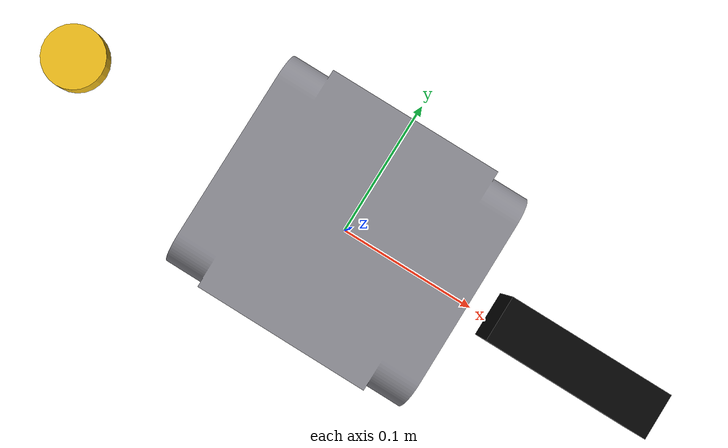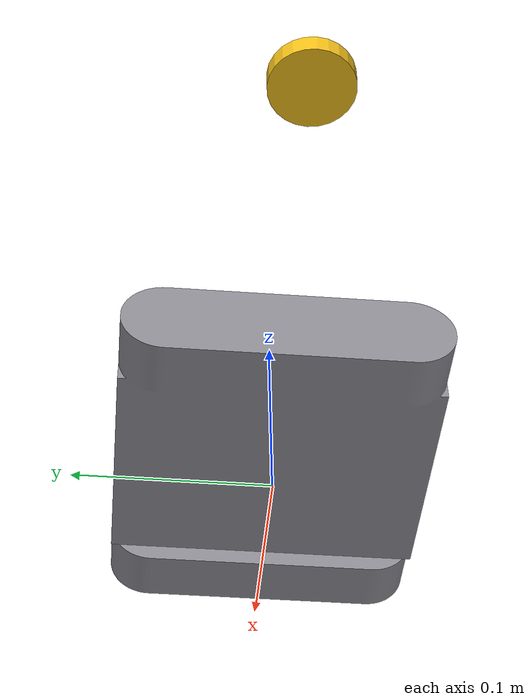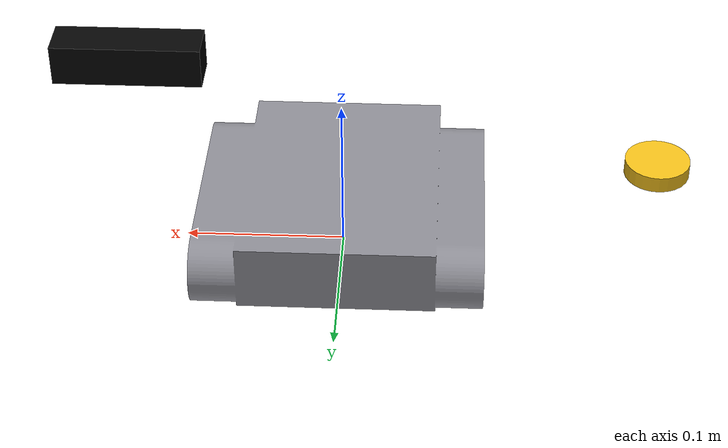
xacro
<?xml version="1.0"?>
<robot xmlns:xacro="http://www.ros.org/wiki/xacro" name="turtle_small">
  <xacro:property name="pi" value="3.141592653589793"/>
  <xacro:property name="mesh_file" value="package://trashbot_description/meshes/turtle_small_visual_mesh.stl"/>

  <xacro:property name="base_length" value="0.1776"/>
  <xacro:property name="base_width" value="0.1580"/>
  <xacro:property name="base_height" value="0.0504"/>
  <xacro:property name="base_mass" value="6.0"/>
  <xacro:property name="base_link_z" value="${base_height / 2.0}"/>

  <!-- Collision stays simple even if the visual mesh includes tracks/sprockets. -->
  <xacro:property name="collision_length" value="${base_length}"/>
  <xacro:property name="collision_width" value="${base_width}"/>
  <xacro:property name="collision_height" value="${base_height}"/>

  <!-- Tracked drive geometry first Onshape measurements. -->
  <xacro:property name="track_width" value="0.137553"/>
  <xacro:property name="half_track_width" value="${track_width / 2.0}"/>
  <xacro:property name="effective_track_radius" value="0.021"/>

  <!-- Actual asymmetric drive sprocket centers from base_link, kept as CAD reference. -->
  <xacro:property name="left_drive_axis_x" value="-0.057871"/>
  <xacro:property name="left_drive_axis_y" value="0.068776"/>
  <xacro:property name="left_drive_axis_z" value="-0.000300"/>
  <xacro:property name="right_drive_axis_x" value="0.058000"/>
  <xacro:property name="right_drive_axis_y" value="-0.068777"/>
  <xacro:property name="right_drive_axis_z" value="0.000000"/>

  <!-- Initial diff-drive approximation uses aligned virtual wheels at x=0. -->
  <xacro:property name="virtual_wheel_x" value="0.0"/>
  <xacro:property name="left_virtual_wheel_y" value="${half_track_width}"/>
  <xacro:property name="right_virtual_wheel_y" value="${-half_track_width}"/>
  <xacro:property name="virtual_wheel_z" value="0.0"/>

  <!-- D435i first Onshape measurement from base_link_mc to camera_link_mc. -->
  <xacro:property name="camera_x" value="0.127688"/>
  <xacro:property name="camera_y" value="-0.001695"/>
  <xacro:property name="camera_z" value="0.107616"/>
  <xacro:property name="camera_roll" value="0.0"/>
  <xacro:property name="camera_pitch" value="0.0"/>
  <xacro:property name="camera_yaw" value="0.0"/>

  <!-- BNO08x first Onshape measurement from base_link_mc to imu_link_mc. -->
  <xacro:property name="imu_x" value="-0.010844"/>
  <xacro:property name="imu_y" value="0.022228"/>
  <xacro:property name="imu_z" value="0.018394"/>
  <xacro:property name="imu_roll" value="0.0"/>
  <xacro:property name="imu_pitch" value="0.0"/>
  <xacro:property name="imu_yaw" value="0.0"/>

  <!-- GPS first Onshape measurement from base_link_mc to gps_link_mc. -->
  <xacro:property name="gps_x" value="-0.194160"/>
  <xacro:property name="gps_y" value="-0.000001"/>
  <xacro:property name="gps_z" value="0.037943"/>
  <xacro:property name="gps_r" value="0.020"/>
  <xacro:property name="gps_h" value="0.010"/>

  <material name="chassis_gray">
    <color rgba="0.55 0.55 0.58 1.0"/>
  </material>
  <material name="sensor_black">
    <color rgba="0.02 0.02 0.02 1.0"/>
  </material>
  <material name="imu_green">
    <color rgba="0.0 0.65 0.25 1.0"/>
  </material>
  <material name="gps_yellow">
    <color rgba="0.95 0.75 0.1 1.0"/>
  </material>

  <xacro:macro name="box_inertial" params="mass x y z">
    <inertial>
      <mass value="${mass}"/>
      <inertia
        ixx="${mass * (y*y + z*z) / 12.0}"
        ixy="0.0"
        ixz="0.0"
        iyy="${mass * (x*x + z*z) / 12.0}"
        iyz="0.0"
        izz="${mass * (x*x + y*y) / 12.0}"/>
    </inertial>
  </xacro:macro>

  <xacro:macro name="cylinder_inertial" params="mass radius length">
    <inertial>
      <mass value="${mass}"/>
      <inertia
        ixx="${mass * (3.0 * radius * radius + length * length) / 12.0}"
        ixy="0.0"
        ixz="0.0"
        iyy="${mass * radius * radius / 2.0}"
        iyz="0.0"
        izz="${mass * (3.0 * radius * radius + length * length) / 12.0}"/>
    </inertial>
  </xacro:macro>

  <link name="base_footprint"/>
  <link name="base_link"/>

  <joint name="base_footprint_to_base_link" type="fixed">
    <parent link="base_footprint"/>
    <child link="base_link"/>
    <origin xyz="0 0 ${base_link_z}" rpy="0 0 0"/>
  </joint>

  <link name="chassis_link">
    <visual>
      <origin xyz="0 0 ${-base_height / 2.0}" rpy="0 0 0"/>
      <geometry>
        <mesh filename="${mesh_file}"/>
      </geometry>
      <material name="chassis_gray"/>
    </visual>
    <collision>
      <origin xyz="0 0 ${-collision_height / 2.0}" rpy="0 0 0"/>
      <geometry>
        <box size="${collision_length} ${collision_width} ${collision_height}"/>
      </geometry>
    </collision>
    <xacro:box_inertial
      mass="${base_mass}"
      x="${collision_length}"
      y="${collision_width}"
      z="${collision_height}"/>
  </link>

  <joint name="base_to_chassis" type="fixed">
    <parent link="base_link"/>
    <child link="chassis_link"/>
    <origin xyz="0 0 0" rpy="0 0 0"/>
  </joint>

  <link name="camera_link">
    <visual>
      <geometry>
        <box size="0.09 0.025 0.025"/>
      </geometry>
      <material name="sensor_black"/>
    </visual>
    <collision>
      <geometry>
        <box size="0.09 0.025 0.025"/>
      </geometry>
    </collision>
    <xacro:box_inertial mass="0.08" x="0.09" y="0.025" z="0.025"/>
  </link>

  <joint name="base_to_camera" type="fixed">
    <parent link="base_link"/>
    <child link="camera_link"/>
    <origin xyz="${camera_x} ${camera_y} ${camera_z}" rpy="${camera_roll} ${camera_pitch} ${camera_yaw}"/>
  </joint>

  <!-- D435i optical frame convention: z forward, x right, y down. -->
  <link name="camera_color_optical_frame"/>
  <joint name="camera_link_to_color_optical_frame" type="fixed">
    <parent link="camera_link"/>
    <child link="camera_color_optical_frame"/>
    <origin xyz="0 0 0" rpy="${-pi / 2.0} 0 ${-pi / 2.0}"/>
  </joint>

  <link name="camera_depth_optical_frame"/>
  <joint name="camera_link_to_depth_optical_frame" type="fixed">
    <parent link="camera_link"/>
    <child link="camera_depth_optical_frame"/>
    <origin xyz="0 0 0" rpy="${-pi / 2.0} 0 ${-pi / 2.0}"/>
  </joint>

  <link name="imu_link">
    <visual>
      <geometry>
        <box size="0.035 0.035 0.008"/>
      </geometry>
      <material name="imu_green"/>
    </visual>
    <collision>
      <geometry>
        <box size="0.035 0.035 0.008"/>
      </geometry>
    </collision>
    <xacro:box_inertial mass="0.01" x="0.035" y="0.035" z="0.008"/>
  </link>

  <joint name="base_to_imu" type="fixed">
    <parent link="base_link"/>
    <child link="imu_link"/>
    <origin xyz="${imu_x} ${imu_y} ${imu_z}" rpy="${imu_roll} ${imu_pitch} ${imu_yaw}"/>
  </joint>

  <link name="gps_link">
    <visual>
      <geometry>
        <cylinder radius="${gps_r}" length="${gps_h}"/>
      </geometry>
      <material name="gps_yellow"/>
    </visual>
    <collision>
      <geometry>
        <cylinder radius="${gps_r}" length="${gps_h}"/>
      </geometry>
    </collision>
    <xacro:cylinder_inertial mass="0.04" radius="${gps_r}" length="${gps_h}"/>
  </link>

  <joint name="base_to_gps" type="fixed">
    <parent link="base_link"/>
    <child link="gps_link"/>
    <origin xyz="${gps_x} ${gps_y} ${gps_z}" rpy="0 0 0"/>
  </joint>
</robot>
